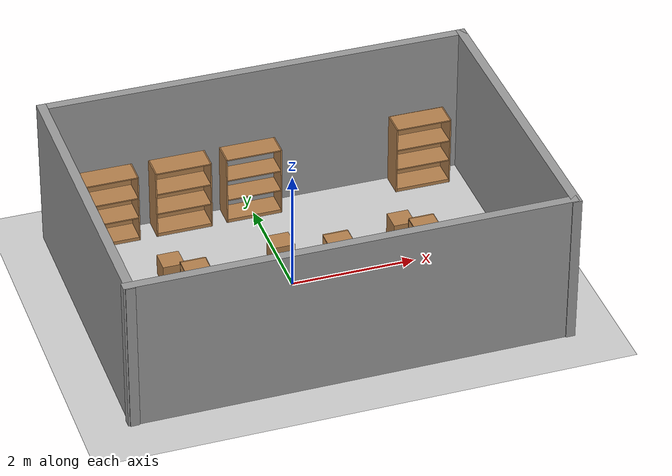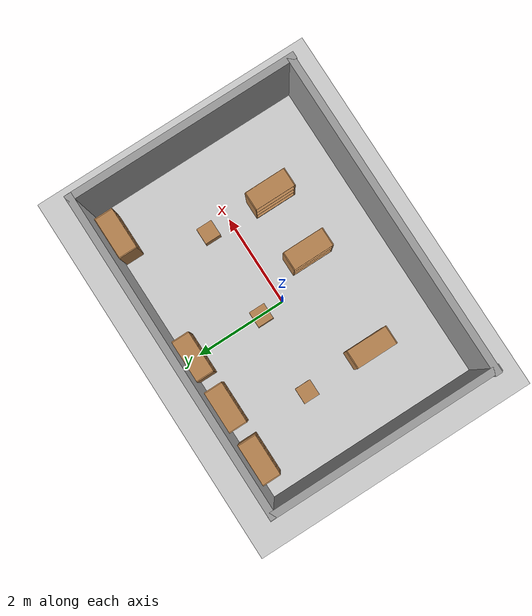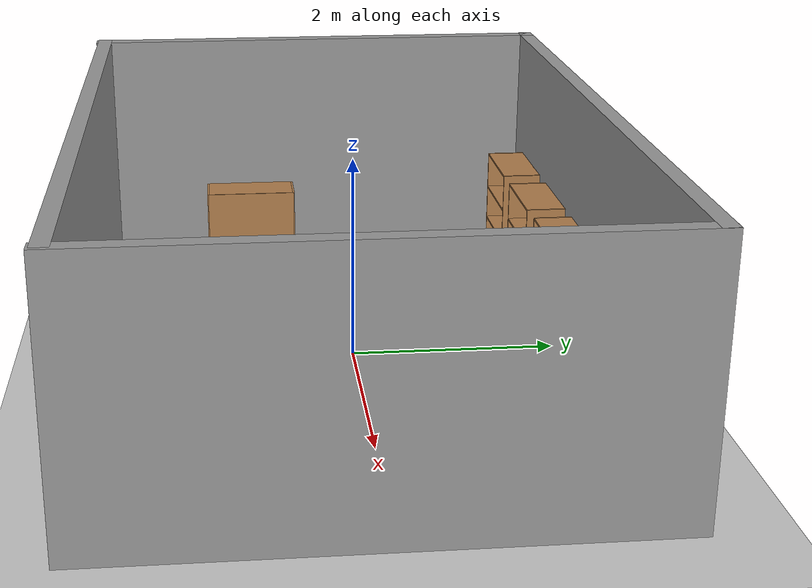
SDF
<sdf version="1.7">
 <world name="default">
  <plugin name="gazebo_ros_factory" filename="libgazebo_ros_factory.so"/>
  <model name="ground_plane">
   <static>1</static>
   <link name="link">
    <collision name="collision">
     <geometry><plane><normal>0 0 1</normal><size>100 100</size></plane></geometry>
     <surface><friction><ode><mu>100</mu><mu2>50</mu2></ode></friction></surface>
    </collision>
    <visual name="visual">
     <cast_shadows>0</cast_shadows>
     <geometry><plane><normal>0 0 1</normal><size>100 100</size></plane></geometry>
     <material>
      <script>
       <uri>file://install/models/media/materials/scripts/gazebo.material</uri>
       <name>Gazebo/Grey</name>
      </script>
     </material>
    </visual>
   </link>
  </model>
  <gravity>0 0 -9.8</gravity>
  <magnetic_field>6e-06 2.3e-05 -4.2e-05</magnetic_field>
  <atmosphere type="adiabatic"/>
  <physics name="default_physics" type="ode">
   <max_step_size>0.001</max_step_size>
   <real_time_factor>1.0</real_time_factor>
   <real_time_update_rate>1000</real_time_update_rate>
  </physics>
  <scene><ambient>0.4 0.4 0.4 1</ambient><background>0.7 0.7 0.7 1</background><shadows>1</shadows></scene>
  <spherical_coordinates>
   <surface_model>EARTH_WGS84</surface_model>
   <latitude_deg>0</latitude_deg>
   <longitude_deg>0</longitude_deg>
   <elevation>0</elevation>
   <heading_deg>0</heading_deg>
  </spherical_coordinates>
  <model name="bookshelf">
   <static>1</static>
   <link name="link">
    <inertial><mass>1</mass></inertial>
    <collision name="back">
     <pose>0 0.005 0.6 0 -0 0</pose>
     <geometry><box><size>0.9 0.01 1.2</size></box></geometry>
    </collision>
    <visual name="visual1">
     <pose>0 0.005 0.6 0 -0 0</pose>
     <geometry><box><size>0.9 0.01 1.2</size></box></geometry>
     <material>
      <script>
       <uri>file://install/models/media/materials/scripts/gazebo.material</uri>
       <name>Gazebo/Wood</name>
      </script>
     </material>
    </visual>
    <collision name="left_side">
     <pose>0.45 -0.195 0.6 0 -0 0</pose>
     <geometry><box><size>0.02 0.4 1.2</size></box></geometry>
    </collision>
    <visual name="visual2">
     <pose>0.45 -0.195 0.6 0 -0 0</pose>
     <geometry><box><size>0.02 0.4 1.2</size></box></geometry>
     <material>
      <script>
       <uri>file://install/models/media/materials/scripts/gazebo.material</uri>
       <name>Gazebo/Wood</name>
      </script>
     </material>
    </visual>
    <collision name="right_side">
     <pose>-0.45 -0.195 0.6 0 -0 0</pose>
     <geometry><box><size>0.02 0.4 1.2</size></box></geometry>
    </collision>
    <visual name="visual3">
     <pose>-0.45 -0.195 0.6 0 -0 0</pose>
     <geometry><box><size>0.02 0.4 1.2</size></box></geometry>
     <material>
      <script>
       <uri>file://install/models/media/materials/scripts/gazebo.material</uri>
       <name>Gazebo/Wood</name>
      </script>
     </material>
    </visual>
    <collision name="bottom">
     <pose>0 -0.195 0.03 0 -0 0</pose>
     <geometry><box><size>0.88 0.4 0.06</size></box></geometry>
    </collision>
    <visual name="visual4">
     <pose>0 -0.195 0.03 0 -0 0</pose>
     <geometry><box><size>0.88 0.4 0.06</size></box></geometry>
     <material>
      <script>
       <uri>file://install/models/media/materials/scripts/gazebo.material</uri>
       <name>Gazebo/Wood</name>
      </script>
     </material>
    </visual>
    <collision name="top">
     <pose>0 -0.195 1.19 0 -0 0</pose>
     <geometry><box><size>0.88 0.4 0.02</size></box></geometry>
    </collision>
    <visual name="visual5">
     <pose>0 -0.195 1.19 0 -0 0</pose>
     <geometry><box><size>0.88 0.4 0.02</size></box></geometry>
     <material>
      <script>
       <uri>file://install/models/media/materials/scripts/gazebo.material</uri>
       <name>Gazebo/Wood</name>
      </script>
     </material>
    </visual>
    <collision name="low_shelf">
     <pose>0 -0.195 0.43 0 -0 0</pose>
     <geometry><box><size>0.88 0.4 0.02</size></box></geometry>
    </collision>
    <visual name="visual6">
     <pose>0 -0.195 0.43 0 -0 0</pose>
     <geometry><box><size>0.88 0.4 0.02</size></box></geometry>
     <material>
      <script>
       <uri>file://install/models/media/materials/scripts/gazebo.material</uri>
       <name>Gazebo/Wood</name>
      </script>
     </material>
    </visual>
    <collision name="high_shelf">
     <pose>0 -0.195 0.8 0 -0 0</pose>
     <geometry><box><size>0.88 0.4 0.02</size></box></geometry>
    </collision>
    <visual name="visual7">
     <pose>0 -0.195 0.8 0 -0 0</pose>
     <geometry><box><size>0.88 0.4 0.02</size></box></geometry>
     <material>
      <script>
       <uri>file://install/models/media/materials/scripts/gazebo.material</uri>
       <name>Gazebo/Wood</name>
      </script>
     </material>
    </visual>
   </link>
   <pose>-2.36767 2.25362 0 0 -0 0</pose>
  </model>
  <model name="bookshelf_clone">
   <static>1</static>
   <link name="link">
    <inertial><mass>1</mass></inertial>
    <collision name="back">
     <pose>0 0.005 0.6 0 -0 0</pose>
     <geometry><box><size>0.9 0.01 1.2</size></box></geometry>
    </collision>
    <visual name="visual1">
     <pose>0 0.005 0.6 0 -0 0</pose>
     <geometry><box><size>0.9 0.01 1.2</size></box></geometry>
     <material>
      <script>
       <uri>file://install/models/media/materials/scripts/gazebo.material</uri>
       <name>Gazebo/Wood</name>
      </script>
     </material>
    </visual>
    <collision name="left_side">
     <pose>0.45 -0.195 0.6 0 -0 0</pose>
     <geometry><box><size>0.02 0.4 1.2</size></box></geometry>
    </collision>
    <visual name="visual2">
     <pose>0.45 -0.195 0.6 0 -0 0</pose>
     <geometry><box><size>0.02 0.4 1.2</size></box></geometry>
     <material>
      <script>
       <uri>file://install/models/media/materials/scripts/gazebo.material</uri>
       <name>Gazebo/Wood</name>
      </script>
     </material>
    </visual>
    <collision name="right_side">
     <pose>-0.45 -0.195 0.6 0 -0 0</pose>
     <geometry><box><size>0.02 0.4 1.2</size></box></geometry>
    </collision>
    <visual name="visual3">
     <pose>-0.45 -0.195 0.6 0 -0 0</pose>
     <geometry><box><size>0.02 0.4 1.2</size></box></geometry>
     <material>
      <script>
       <uri>file://install/models/media/materials/scripts/gazebo.material</uri>
       <name>Gazebo/Wood</name>
      </script>
     </material>
    </visual>
    <collision name="bottom">
     <pose>0 -0.195 0.03 0 -0 0</pose>
     <geometry><box><size>0.88 0.4 0.06</size></box></geometry>
    </collision>
    <visual name="visual4">
     <pose>0 -0.195 0.03 0 -0 0</pose>
     <geometry><box><size>0.88 0.4 0.06</size></box></geometry>
     <material>
      <script>
       <uri>file://install/models/media/materials/scripts/gazebo.material</uri>
       <name>Gazebo/Wood</name>
      </script>
     </material>
    </visual>
    <collision name="top">
     <pose>0 -0.195 1.19 0 -0 0</pose>
     <geometry><box><size>0.88 0.4 0.02</size></box></geometry>
    </collision>
    <visual name="visual5">
     <pose>0 -0.195 1.19 0 -0 0</pose>
     <geometry><box><size>0.88 0.4 0.02</size></box></geometry>
     <material>
      <script>
       <uri>file://install/models/media/materials/scripts/gazebo.material</uri>
       <name>Gazebo/Wood</name>
      </script>
     </material>
    </visual>
    <collision name="low_shelf">
     <pose>0 -0.195 0.43 0 -0 0</pose>
     <geometry><box><size>0.88 0.4 0.02</size></box></geometry>
    </collision>
    <visual name="visual6">
     <pose>0 -0.195 0.43 0 -0 0</pose>
     <geometry><box><size>0.88 0.4 0.02</size></box></geometry>
     <material>
      <script>
       <uri>file://install/models/media/materials/scripts/gazebo.material</uri>
       <name>Gazebo/Wood</name>
      </script>
     </material>
    </visual>
    <collision name="high_shelf">
     <pose>0 -0.195 0.8 0 -0 0</pose>
     <geometry><box><size>0.88 0.4 0.02</size></box></geometry>
    </collision>
    <visual name="visual7">
     <pose>0 -0.195 0.8 0 -0 0</pose>
     <geometry><box><size>0.88 0.4 0.02</size></box></geometry>
     <material>
      <script>
       <uri>file://install/models/media/materials/scripts/gazebo.material</uri>
       <name>Gazebo/Wood</name>
      </script>
     </material>
    </visual>
   </link>
   <pose>-1.17894 2.25547 0 0 -0 0</pose>
  </model>
  <model name="bookshelf_clone_0">
   <static>1</static>
   <link name="link">
    <inertial><mass>1</mass></inertial>
    <collision name="back">
     <pose>0 0.005 0.6 0 -0 0</pose>
     <geometry><box><size>0.9 0.01 1.2</size></box></geometry>
    </collision>
    <visual name="visual1">
     <pose>0 0.005 0.6 0 -0 0</pose>
     <geometry><box><size>0.9 0.01 1.2</size></box></geometry>
     <material>
      <script>
       <uri>file://install/models/media/materials/scripts/gazebo.material</uri>
       <name>Gazebo/Wood</name>
      </script>
     </material>
    </visual>
    <collision name="left_side">
     <pose>0.45 -0.195 0.6 0 -0 0</pose>
     <geometry><box><size>0.02 0.4 1.2</size></box></geometry>
    </collision>
    <visual name="visual2">
     <pose>0.45 -0.195 0.6 0 -0 0</pose>
     <geometry><box><size>0.02 0.4 1.2</size></box></geometry>
     <material>
      <script>
       <uri>file://install/models/media/materials/scripts/gazebo.material</uri>
       <name>Gazebo/Wood</name>
      </script>
     </material>
    </visual>
    <collision name="right_side">
     <pose>-0.45 -0.195 0.6 0 -0 0</pose>
     <geometry><box><size>0.02 0.4 1.2</size></box></geometry>
    </collision>
    <visual name="visual3">
     <pose>-0.45 -0.195 0.6 0 -0 0</pose>
     <geometry><box><size>0.02 0.4 1.2</size></box></geometry>
     <material>
      <script>
       <uri>file://install/models/media/materials/scripts/gazebo.material</uri>
       <name>Gazebo/Wood</name>
      </script>
     </material>
    </visual>
    <collision name="bottom">
     <pose>0 -0.195 0.03 0 -0 0</pose>
     <geometry><box><size>0.88 0.4 0.06</size></box></geometry>
    </collision>
    <visual name="visual4">
     <pose>0 -0.195 0.03 0 -0 0</pose>
     <geometry><box><size>0.88 0.4 0.06</size></box></geometry>
     <material>
      <script>
       <uri>file://install/models/media/materials/scripts/gazebo.material</uri>
       <name>Gazebo/Wood</name>
      </script>
     </material>
    </visual>
    <collision name="top">
     <pose>0 -0.195 1.19 0 -0 0</pose>
     <geometry><box><size>0.88 0.4 0.02</size></box></geometry>
    </collision>
    <visual name="visual5">
     <pose>0 -0.195 1.19 0 -0 0</pose>
     <geometry><box><size>0.88 0.4 0.02</size></box></geometry>
     <material>
      <script>
       <uri>file://install/models/media/materials/scripts/gazebo.material</uri>
       <name>Gazebo/Wood</name>
      </script>
     </material>
    </visual>
    <collision name="low_shelf">
     <pose>0 -0.195 0.43 0 -0 0</pose>
     <geometry><box><size>0.88 0.4 0.02</size></box></geometry>
    </collision>
    <visual name="visual6">
     <pose>0 -0.195 0.43 0 -0 0</pose>
     <geometry><box><size>0.88 0.4 0.02</size></box></geometry>
     <material>
      <script>
       <uri>file://install/models/media/materials/scripts/gazebo.material</uri>
       <name>Gazebo/Wood</name>
      </script>
     </material>
    </visual>
    <collision name="high_shelf">
     <pose>0 -0.195 0.8 0 -0 0</pose>
     <geometry><box><size>0.88 0.4 0.02</size></box></geometry>
    </collision>
    <visual name="visual7">
     <pose>0 -0.195 0.8 0 -0 0</pose>
     <geometry><box><size>0.88 0.4 0.02</size></box></geometry>
     <material>
      <script>
       <uri>file://install/models/media/materials/scripts/gazebo.material</uri>
       <name>Gazebo/Wood</name>
      </script>
     </material>
    </visual>
   </link>
   <pose>2.80669 2.23026 0 0 -0 0</pose>
  </model>
  <model name="bookshelf_clone_1">
   <static>1</static>
   <link name="link">
    <inertial><mass>1</mass></inertial>
    <collision name="back">
     <pose>0 0.005 0.6 0 -0 0</pose>
     <geometry><box><size>0.9 0.01 1.2</size></box></geometry>
    </collision>
    <visual name="visual1">
     <pose>0 0.005 0.6 0 -0 0</pose>
     <geometry><box><size>0.9 0.01 1.2</size></box></geometry>
     <material>
      <script>
       <uri>file://install/models/media/materials/scripts/gazebo.material</uri>
       <name>Gazebo/Wood</name>
      </script>
     </material>
    </visual>
    <collision name="left_side">
     <pose>0.45 -0.195 0.6 0 -0 0</pose>
     <geometry><box><size>0.02 0.4 1.2</size></box></geometry>
    </collision>
    <visual name="visual2">
     <pose>0.45 -0.195 0.6 0 -0 0</pose>
     <geometry><box><size>0.02 0.4 1.2</size></box></geometry>
     <material>
      <script>
       <uri>file://install/models/media/materials/scripts/gazebo.material</uri>
       <name>Gazebo/Wood</name>
      </script>
     </material>
    </visual>
    <collision name="right_side">
     <pose>-0.45 -0.195 0.6 0 -0 0</pose>
     <geometry><box><size>0.02 0.4 1.2</size></box></geometry>
    </collision>
    <visual name="visual3">
     <pose>-0.45 -0.195 0.6 0 -0 0</pose>
     <geometry><box><size>0.02 0.4 1.2</size></box></geometry>
     <material>
      <script>
       <uri>file://install/models/media/materials/scripts/gazebo.material</uri>
       <name>Gazebo/Wood</name>
      </script>
     </material>
    </visual>
    <collision name="bottom">
     <pose>0 -0.195 0.03 0 -0 0</pose>
     <geometry><box><size>0.88 0.4 0.06</size></box></geometry>
    </collision>
    <visual name="visual4">
     <pose>0 -0.195 0.03 0 -0 0</pose>
     <geometry><box><size>0.88 0.4 0.06</size></box></geometry>
     <material>
      <script>
       <uri>file://install/models/media/materials/scripts/gazebo.material</uri>
       <name>Gazebo/Wood</name>
      </script>
     </material>
    </visual>
    <collision name="top">
     <pose>0 -0.195 1.19 0 -0 0</pose>
     <geometry><box><size>0.88 0.4 0.02</size></box></geometry>
    </collision>
    <visual name="visual5">
     <pose>0 -0.195 1.19 0 -0 0</pose>
     <geometry><box><size>0.88 0.4 0.02</size></box></geometry>
     <material>
      <script>
       <uri>file://install/models/media/materials/scripts/gazebo.material</uri>
       <name>Gazebo/Wood</name>
      </script>
     </material>
    </visual>
    <collision name="low_shelf">
     <pose>0 -0.195 0.43 0 -0 0</pose>
     <geometry><box><size>0.88 0.4 0.02</size></box></geometry>
    </collision>
    <visual name="visual6">
     <pose>0 -0.195 0.43 0 -0 0</pose>
     <geometry><box><size>0.88 0.4 0.02</size></box></geometry>
     <material>
      <script>
       <uri>file://install/models/media/materials/scripts/gazebo.material</uri>
       <name>Gazebo/Wood</name>
      </script>
     </material>
    </visual>
    <collision name="high_shelf">
     <pose>0 -0.195 0.8 0 -0 0</pose>
     <geometry><box><size>0.88 0.4 0.02</size></box></geometry>
    </collision>
    <visual name="visual7">
     <pose>0 -0.195 0.8 0 -0 0</pose>
     <geometry><box><size>0.88 0.4 0.02</size></box></geometry>
     <material>
      <script>
       <uri>file://install/models/media/materials/scripts/gazebo.material</uri>
       <name>Gazebo/Wood</name>
      </script>
     </material>
    </visual>
   </link>
   <pose>0.720108 -0.938234 0 0 0 -1.56945</pose>
  </model>
  <model name="bookshelf_clone_1_clone">
   <static>1</static>
   <link name="link">
    <inertial><mass>1</mass></inertial>
    <collision name="back">
     <pose>0 0.005 0.6 0 -0 0</pose>
     <geometry><box><size>0.9 0.01 1.2</size></box></geometry>
    </collision>
    <visual name="visual1">
     <pose>0 0.005 0.6 0 -0 0</pose>
     <geometry><box><size>0.9 0.01 1.2</size></box></geometry>
     <material>
      <script>
       <uri>file://install/models/media/materials/scripts/gazebo.material</uri>
       <name>Gazebo/Wood</name>
      </script>
     </material>
    </visual>
    <collision name="left_side">
     <pose>0.45 -0.195 0.6 0 -0 0</pose>
     <geometry><box><size>0.02 0.4 1.2</size></box></geometry>
    </collision>
    <visual name="visual2">
     <pose>0.45 -0.195 0.6 0 -0 0</pose>
     <geometry><box><size>0.02 0.4 1.2</size></box></geometry>
     <material>
      <script>
       <uri>file://install/models/media/materials/scripts/gazebo.material</uri>
       <name>Gazebo/Wood</name>
      </script>
     </material>
    </visual>
    <collision name="right_side">
     <pose>-0.45 -0.195 0.6 0 -0 0</pose>
     <geometry><box><size>0.02 0.4 1.2</size></box></geometry>
    </collision>
    <visual name="visual3">
     <pose>-0.45 -0.195 0.6 0 -0 0</pose>
     <geometry><box><size>0.02 0.4 1.2</size></box></geometry>
     <material>
      <script>
       <uri>file://install/models/media/materials/scripts/gazebo.material</uri>
       <name>Gazebo/Wood</name>
      </script>
     </material>
    </visual>
    <collision name="bottom">
     <pose>0 -0.195 0.03 0 -0 0</pose>
     <geometry><box><size>0.88 0.4 0.06</size></box></geometry>
    </collision>
    <visual name="visual4">
     <pose>0 -0.195 0.03 0 -0 0</pose>
     <geometry><box><size>0.88 0.4 0.06</size></box></geometry>
     <material>
      <script>
       <uri>file://install/models/media/materials/scripts/gazebo.material</uri>
       <name>Gazebo/Wood</name>
      </script>
     </material>
    </visual>
    <collision name="top">
     <pose>0 -0.195 1.19 0 -0 0</pose>
     <geometry><box><size>0.88 0.4 0.02</size></box></geometry>
    </collision>
    <visual name="visual5">
     <pose>0 -0.195 1.19 0 -0 0</pose>
     <geometry><box><size>0.88 0.4 0.02</size></box></geometry>
     <material>
      <script>
       <uri>file://install/models/media/materials/scripts/gazebo.material</uri>
       <name>Gazebo/Wood</name>
      </script>
     </material>
    </visual>
    <collision name="low_shelf">
     <pose>0 -0.195 0.43 0 -0 0</pose>
     <geometry><box><size>0.88 0.4 0.02</size></box></geometry>
    </collision>
    <visual name="visual6">
     <pose>0 -0.195 0.43 0 -0 0</pose>
     <geometry><box><size>0.88 0.4 0.02</size></box></geometry>
     <material>
      <script>
       <uri>file://install/models/media/materials/scripts/gazebo.material</uri>
       <name>Gazebo/Wood</name>
      </script>
     </material>
    </visual>
    <collision name="high_shelf">
     <pose>0 -0.195 0.8 0 -0 0</pose>
     <geometry><box><size>0.88 0.4 0.02</size></box></geometry>
    </collision>
    <visual name="visual7">
     <pose>0 -0.195 0.8 0 -0 0</pose>
     <geometry><box><size>0.88 0.4 0.02</size></box></geometry>
     <material>
      <script>
       <uri>file://install/models/media/materials/scripts/gazebo.material</uri>
       <name>Gazebo/Wood</name>
      </script>
     </material>
    </visual>
   </link>
   <pose>2.10412 -0.948507 0 0 0 -1.56945</pose>
  </model>
  <model name="bookshelf_clone_1_clone_0">
   <static>1</static>
   <link name="link">
    <inertial><mass>1</mass></inertial>
    <collision name="back">
     <pose>0 0.005 0.6 0 -0 0</pose>
     <geometry><box><size>0.9 0.01 1.2</size></box></geometry>
    </collision>
    <visual name="visual1">
     <pose>0 0.005 0.6 0 -0 0</pose>
     <geometry><box><size>0.9 0.01 1.2</size></box></geometry>
     <material>
      <script>
       <uri>file://install/models/media/materials/scripts/gazebo.material</uri>
       <name>Gazebo/Wood</name>
      </script>
     </material>
    </visual>
    <collision name="left_side">
     <pose>0.45 -0.195 0.6 0 -0 0</pose>
     <geometry><box><size>0.02 0.4 1.2</size></box></geometry>
    </collision>
    <visual name="visual2">
     <pose>0.45 -0.195 0.6 0 -0 0</pose>
     <geometry><box><size>0.02 0.4 1.2</size></box></geometry>
     <material>
      <script>
       <uri>file://install/models/media/materials/scripts/gazebo.material</uri>
       <name>Gazebo/Wood</name>
      </script>
     </material>
    </visual>
    <collision name="right_side">
     <pose>-0.45 -0.195 0.6 0 -0 0</pose>
     <geometry><box><size>0.02 0.4 1.2</size></box></geometry>
    </collision>
    <visual name="visual3">
     <pose>-0.45 -0.195 0.6 0 -0 0</pose>
     <geometry><box><size>0.02 0.4 1.2</size></box></geometry>
     <material>
      <script>
       <uri>file://install/models/media/materials/scripts/gazebo.material</uri>
       <name>Gazebo/Wood</name>
      </script>
     </material>
    </visual>
    <collision name="bottom">
     <pose>0 -0.195 0.03 0 -0 0</pose>
     <geometry><box><size>0.88 0.4 0.06</size></box></geometry>
    </collision>
    <visual name="visual4">
     <pose>0 -0.195 0.03 0 -0 0</pose>
     <geometry><box><size>0.88 0.4 0.06</size></box></geometry>
     <material>
      <script>
       <uri>file://install/models/media/materials/scripts/gazebo.material</uri>
       <name>Gazebo/Wood</name>
      </script>
     </material>
    </visual>
    <collision name="top">
     <pose>0 -0.195 1.19 0 -0 0</pose>
     <geometry><box><size>0.88 0.4 0.02</size></box></geometry>
    </collision>
    <visual name="visual5">
     <pose>0 -0.195 1.19 0 -0 0</pose>
     <geometry><box><size>0.88 0.4 0.02</size></box></geometry>
     <material>
      <script>
       <uri>file://install/models/media/materials/scripts/gazebo.material</uri>
       <name>Gazebo/Wood</name>
      </script>
     </material>
    </visual>
    <collision name="low_shelf">
     <pose>0 -0.195 0.43 0 -0 0</pose>
     <geometry><box><size>0.88 0.4 0.02</size></box></geometry>
    </collision>
    <visual name="visual6">
     <pose>0 -0.195 0.43 0 -0 0</pose>
     <geometry><box><size>0.88 0.4 0.02</size></box></geometry>
     <material>
      <script>
       <uri>file://install/models/media/materials/scripts/gazebo.material</uri>
       <name>Gazebo/Wood</name>
      </script>
     </material>
    </visual>
    <collision name="high_shelf">
     <pose>0 -0.195 0.8 0 -0 0</pose>
     <geometry><box><size>0.88 0.4 0.02</size></box></geometry>
    </collision>
    <visual name="visual7">
     <pose>0 -0.195 0.8 0 -0 0</pose>
     <geometry><box><size>0.88 0.4 0.02</size></box></geometry>
     <material>
      <script>
       <uri>file://install/models/media/materials/scripts/gazebo.material</uri>
       <name>Gazebo/Wood</name>
      </script>
     </material>
    </visual>
   </link>
   <pose>-1.5401 -0.931909 0 0 0 -1.56945</pose>
  </model>
  <audio><device>default</device></audio>
  <model name="small_box_rl4greeros">
   <link name="link">
    <inertial>
     <mass>0.7</mass>
     <inertia>
      <ixx>0.116667</ixx>
      <ixy>0</ixy>
      <ixz>0</ixz>
      <iyy>0.116667</iyy>
      <iyz>0</iyz>
      <izz>0.116667</izz>
     </inertia>
    </inertial>
    <visual name="visual">
     <geometry><box><size>0.35 0.35 0.35</size></box></geometry>
     <material>
      <script>
       <name>Gazebo/Wood</name>
       <uri>file://install/models/media/materials/scripts/gazebo.material</uri>
      </script>
      <shader type="vertex"><normal_map>__default__</normal_map></shader>
      <ambient>0.3 0.3 0.3 1</ambient>
      <diffuse>0.7 0.7 0.7 1</diffuse>
      <specular>0.01 0.01 0.01 1</specular>
      <emissive>0 0 0 1</emissive>
     </material>
    </visual>
    <collision name="collision">
     <geometry><box><size>0.35 0.35 0.35</size></box></geometry>
     <surface>
      <friction>
       <ode><mu>1</mu><mu2>1</mu2><fdir1>0 0 0</fdir1><slip1>0</slip1><slip2>0</slip2></ode>
       <torsional>
        <coefficient>1</coefficient>
        <patch_radius>0</patch_radius>
        <surface_radius>0</surface_radius>
        <use_patch_radius>1</use_patch_radius>
        <ode><slip>0</slip></ode>
       </torsional>
      </friction>
      <bounce><restitution_coefficient>0</restitution_coefficient><threshold>1e+06</threshold></bounce>
      <contact>
       <collide_without_contact>0</collide_without_contact>
       <collide_without_contact_bitmask>1</collide_without_contact_bitmask>
       <collide_bitmask>1</collide_bitmask>
       <ode>
        <soft_cfm>0</soft_cfm>
        <soft_erp>0.2</soft_erp>
        <kp>1e+13</kp>
        <kd>1</kd>
        <max_vel>0.01</max_vel>
        <min_depth>0</min_depth>
       </ode>
       <bullet>
        <split_impulse>1</split_impulse>
        <split_impulse_penetration_threshold>-0.01</split_impulse_penetration_threshold>
        <soft_cfm>0</soft_cfm>
        <soft_erp>0.2</soft_erp>
        <kp>1e+13</kp>
        <kd>1</kd>
       </bullet>
      </contact>
     </surface>
    </collision>
   </link>
   <static>0</static>
   <pose>1.94976 0.497697 0.310834 0.000424 0.003156 -6.7e-05</pose>
  </model>
  <model name="small_box_rl4greeros_clone">
   <link name="link">
    <inertial>
     <mass>0.7</mass>
     <inertia>
      <ixx>0.116667</ixx>
      <ixy>0</ixy>
      <ixz>0</ixz>
      <iyy>0.116667</iyy>
      <iyz>0</iyz>
      <izz>0.116667</izz>
     </inertia>
    </inertial>
    <visual name="visual">
     <geometry><box><size>0.35 0.35 0.35</size></box></geometry>
     <material>
      <script>
       <name>Gazebo/Wood</name>
       <uri>file://install/models/media/materials/scripts/gazebo.material</uri>
      </script>
      <shader type="vertex"><normal_map>__default__</normal_map></shader>
      <ambient>0.3 0.3 0.3 1</ambient>
      <diffuse>0.7 0.7 0.7 1</diffuse>
      <specular>0.01 0.01 0.01 1</specular>
      <emissive>0 0 0 1</emissive>
     </material>
    </visual>
    <collision name="collision">
     <geometry><box><size>0.35 0.35 0.35</size></box></geometry>
     <surface>
      <friction>
       <ode><mu>1</mu><mu2>1</mu2><fdir1>0 0 0</fdir1><slip1>0</slip1><slip2>0</slip2></ode>
       <torsional>
        <coefficient>1</coefficient>
        <patch_radius>0</patch_radius>
        <surface_radius>0</surface_radius>
        <use_patch_radius>1</use_patch_radius>
        <ode><slip>0</slip></ode>
       </torsional>
      </friction>
      <bounce><restitution_coefficient>0</restitution_coefficient><threshold>1e+06</threshold></bounce>
      <contact>
       <collide_without_contact>0</collide_without_contact>
       <collide_without_contact_bitmask>1</collide_without_contact_bitmask>
       <collide_bitmask>1</collide_bitmask>
       <ode>
        <soft_cfm>0</soft_cfm>
        <soft_erp>0.2</soft_erp>
        <kp>1e+13</kp>
        <kd>1</kd>
        <max_vel>0.01</max_vel>
        <min_depth>0</min_depth>
       </ode>
       <bullet>
        <split_impulse>1</split_impulse>
        <split_impulse_penetration_threshold>-0.01</split_impulse_penetration_threshold>
        <soft_cfm>0</soft_cfm>
        <soft_erp>0.2</soft_erp>
        <kp>1e+13</kp>
        <kd>1</kd>
       </bullet>
      </contact>
     </surface>
    </collision>
   </link>
   <static>0</static>
   <pose>-0.022068 0.511684 0.317336 -0 -4e-06 3.1e-05</pose>
  </model>
  <model name="small_box_rl4greeros_clone_clone">
   <link name="link">
    <inertial>
     <mass>0.7</mass>
     <inertia>
      <ixx>0.116667</ixx>
      <ixy>0</ixy>
      <ixz>0</ixz>
      <iyy>0.116667</iyy>
      <iyz>0</iyz>
      <izz>0.116667</izz>
     </inertia>
    </inertial>
    <visual name="visual">
     <geometry><box><size>0.35 0.35 0.35</size></box></geometry>
     <material>
      <script>
       <name>Gazebo/Wood</name>
       <uri>file://install/models/media/materials/scripts/gazebo.material</uri>
      </script>
      <shader type="vertex"><normal_map>__default__</normal_map></shader>
      <ambient>0.3 0.3 0.3 1</ambient>
      <diffuse>0.7 0.7 0.7 1</diffuse>
      <specular>0.01 0.01 0.01 1</specular>
      <emissive>0 0 0 1</emissive>
     </material>
    </visual>
    <collision name="collision">
     <geometry><box><size>0.35 0.35 0.35</size></box></geometry>
     <surface>
      <friction>
       <ode><mu>1</mu><mu2>1</mu2><fdir1>0 0 0</fdir1><slip1>0</slip1><slip2>0</slip2></ode>
       <torsional>
        <coefficient>1</coefficient>
        <patch_radius>0</patch_radius>
        <surface_radius>0</surface_radius>
        <use_patch_radius>1</use_patch_radius>
        <ode><slip>0</slip></ode>
       </torsional>
      </friction>
      <bounce><restitution_coefficient>0</restitution_coefficient><threshold>1e+06</threshold></bounce>
      <contact>
       <collide_without_contact>0</collide_without_contact>
       <collide_without_contact_bitmask>1</collide_without_contact_bitmask>
       <collide_bitmask>1</collide_bitmask>
       <ode>
        <soft_cfm>0</soft_cfm>
        <soft_erp>0.2</soft_erp>
        <kp>1e+13</kp>
        <kd>1</kd>
        <max_vel>0.01</max_vel>
        <min_depth>0</min_depth>
       </ode>
       <bullet>
        <split_impulse>1</split_impulse>
        <split_impulse_penetration_threshold>-0.01</split_impulse_penetration_threshold>
        <soft_cfm>0</soft_cfm>
        <soft_erp>0.2</soft_erp>
        <kp>1e+13</kp>
        <kd>1</kd>
       </bullet>
      </contact>
     </surface>
    </collision>
   </link>
   <static>0</static>
   <pose>-1.78764 0.565581 0.31709 0.000933 -9e-06 -1.6e-05</pose>
  </model>
  <light name="user_point_light_0" type="point">
   <pose>0.074508 0.119662 1 0 -0 0</pose>
   <diffuse>0.5 0.5 0.5 1</diffuse>
   <specular>0.1 0.1 0.1 1</specular>
   <attenuation>
    <range>20</range>
    <constant>0.5</constant>
    <linear>0.01</linear>
    <quadratic>0.001</quadratic>
   </attenuation>
   <cast_shadows>0</cast_shadows>
   <direction>0 0 -1</direction>
   <spot><inner_angle>0</inner_angle><outer_angle>0</outer_angle><falloff>0</falloff></spot>
  </light>
  <model name="bookshelf_clone_clone">
   <static>1</static>
   <link name="link">
    <inertial><mass>1</mass></inertial>
    <collision name="back">
     <pose>0 0.005 0.6 0 -0 0</pose>
     <geometry><box><size>0.9 0.01 1.2</size></box></geometry>
    </collision>
    <visual name="visual1">
     <pose>0 0.005 0.6 0 -0 0</pose>
     <geometry><box><size>0.9 0.01 1.2</size></box></geometry>
     <material>
      <script>
       <uri>file://install/models/media/materials/scripts/gazebo.material</uri>
       <name>Gazebo/Wood</name>
      </script>
     </material>
    </visual>
    <collision name="left_side">
     <pose>0.45 -0.195 0.6 0 -0 0</pose>
     <geometry><box><size>0.02 0.4 1.2</size></box></geometry>
    </collision>
    <visual name="visual2">
     <pose>0.45 -0.195 0.6 0 -0 0</pose>
     <geometry><box><size>0.02 0.4 1.2</size></box></geometry>
     <material>
      <script>
       <uri>file://install/models/media/materials/scripts/gazebo.material</uri>
       <name>Gazebo/Wood</name>
      </script>
     </material>
    </visual>
    <collision name="right_side">
     <pose>-0.45 -0.195 0.6 0 -0 0</pose>
     <geometry><box><size>0.02 0.4 1.2</size></box></geometry>
    </collision>
    <visual name="visual3">
     <pose>-0.45 -0.195 0.6 0 -0 0</pose>
     <geometry><box><size>0.02 0.4 1.2</size></box></geometry>
     <material>
      <script>
       <uri>file://install/models/media/materials/scripts/gazebo.material</uri>
       <name>Gazebo/Wood</name>
      </script>
     </material>
    </visual>
    <collision name="bottom">
     <pose>0 -0.195 0.03 0 -0 0</pose>
     <geometry><box><size>0.88 0.4 0.06</size></box></geometry>
    </collision>
    <visual name="visual4">
     <pose>0 -0.195 0.03 0 -0 0</pose>
     <geometry><box><size>0.88 0.4 0.06</size></box></geometry>
     <material>
      <script>
       <uri>file://install/models/media/materials/scripts/gazebo.material</uri>
       <name>Gazebo/Wood</name>
      </script>
     </material>
    </visual>
    <collision name="top">
     <pose>0 -0.195 1.19 0 -0 0</pose>
     <geometry><box><size>0.88 0.4 0.02</size></box></geometry>
    </collision>
    <visual name="visual5">
     <pose>0 -0.195 1.19 0 -0 0</pose>
     <geometry><box><size>0.88 0.4 0.02</size></box></geometry>
     <material>
      <script>
       <uri>file://install/models/media/materials/scripts/gazebo.material</uri>
       <name>Gazebo/Wood</name>
      </script>
     </material>
    </visual>
    <collision name="low_shelf">
     <pose>0 -0.195 0.43 0 -0 0</pose>
     <geometry><box><size>0.88 0.4 0.02</size></box></geometry>
    </collision>
    <visual name="visual6">
     <pose>0 -0.195 0.43 0 -0 0</pose>
     <geometry><box><size>0.88 0.4 0.02</size></box></geometry>
     <material>
      <script>
       <uri>file://install/models/media/materials/scripts/gazebo.material</uri>
       <name>Gazebo/Wood</name>
      </script>
     </material>
    </visual>
    <collision name="high_shelf">
     <pose>0 -0.195 0.8 0 -0 0</pose>
     <geometry><box><size>0.88 0.4 0.02</size></box></geometry>
    </collision>
    <visual name="visual7">
     <pose>0 -0.195 0.8 0 -0 0</pose>
     <geometry><box><size>0.88 0.4 0.02</size></box></geometry>
     <material>
      <script>
       <uri>file://install/models/media/materials/scripts/gazebo.material</uri>
       <name>Gazebo/Wood</name>
      </script>
     </material>
    </visual>
   </link>
   <pose>-0.017756 2.26953 0 0 -0 0</pose>
  </model>
  <model name="large_room">
   <link name="Wall_0">
    <pose>2e-06 0.671804 0 0 -0 3.14159</pose>
    <inertial>
     <mass>1</mass>
     <inertia><ixx>1</ixx><ixy>0</ixy><ixz>0</ixz><iyy>1</iyy><iyz>0</iyz><izz>1</izz></inertia>
    </inertial>
    <visual name="Wall_0_Visual">
     <pose>0 0 1.25 0 -0 0</pose>
     <geometry><box><size>7 0.15 2.5</size></box></geometry>
     <material>
      <script>
       <uri>file://install/models/media/materials/scripts/gazebo.material</uri>
       <name>Gazebo/Grey</name>
      </script>
      <ambient>1 1 1 1</ambient>
      <shader type="pixel"><normal_map>__default__</normal_map></shader>
      <diffuse>0.7 0.7 0.7 1</diffuse>
      <specular>0.01 0.01 0.01 1</specular>
      <emissive>0 0 0 1</emissive>
     </material>
     <meta><layer>0</layer></meta>
    </visual>
    <collision name="Wall_0_Collision">
     <pose>0 0 1.25 0 -0 0</pose>
     <geometry><box><size>7 0.15 2.5</size></box></geometry>
     <surface>
      <friction>
       <ode><mu>1</mu><mu2>1</mu2><fdir1>0 0 0</fdir1><slip1>0</slip1><slip2>0</slip2></ode>
       <torsional>
        <coefficient>1</coefficient>
        <patch_radius>0</patch_radius>
        <surface_radius>0</surface_radius>
        <use_patch_radius>1</use_patch_radius>
        <ode><slip>0</slip></ode>
       </torsional>
      </friction>
      <bounce><restitution_coefficient>0</restitution_coefficient><threshold>1e+06</threshold></bounce>
      <contact>
       <collide_without_contact>0</collide_without_contact>
       <collide_without_contact_bitmask>1</collide_without_contact_bitmask>
       <collide_bitmask>1</collide_bitmask>
       <ode>
        <soft_cfm>0</soft_cfm>
        <soft_erp>0.2</soft_erp>
        <kp>1e+13</kp>
        <kd>1</kd>
        <max_vel>0.01</max_vel>
        <min_depth>0</min_depth>
       </ode>
       <bullet>
        <split_impulse>1</split_impulse>
        <split_impulse_penetration_threshold>-0.01</split_impulse_penetration_threshold>
        <soft_cfm>0</soft_cfm>
        <soft_erp>0.2</soft_erp>
        <kp>1e+13</kp>
        <kd>1</kd>
       </bullet>
      </contact>
     </surface>
    </collision>
   </link>
   <link name="Wall_0_clone">
    <pose>-0.035208 -4.16031 0 0 -0 3.14159</pose>
    <inertial>
     <mass>1</mass>
     <inertia><ixx>1</ixx><ixy>0</ixy><ixz>0</ixz><iyy>1</iyy><iyz>0</iyz><izz>1</izz></inertia>
    </inertial>
    <visual name="Wall_0_Visual">
     <pose>0 0 1.25 0 -0 0</pose>
     <geometry><box><size>7 0.15 2.5</size></box></geometry>
     <material>
      <script>
       <uri>file://install/models/media/materials/scripts/gazebo.material</uri>
       <name>Gazebo/Grey</name>
      </script>
      <ambient>1 1 1 1</ambient>
      <shader type="pixel"><normal_map>__default__</normal_map></shader>
      <diffuse>0.7 0.7 0.7 1</diffuse>
      <specular>0.01 0.01 0.01 1</specular>
      <emissive>0 0 0 1</emissive>
     </material>
     <meta><layer>0</layer></meta>
    </visual>
    <collision name="Wall_0_Collision">
     <pose>0 0 1.25 0 -0 0</pose>
     <geometry><box><size>7 0.15 2.5</size></box></geometry>
     <surface>
      <friction>
       <ode><mu>1</mu><mu2>1</mu2><fdir1>0 0 0</fdir1><slip1>0</slip1><slip2>0</slip2></ode>
       <torsional>
        <coefficient>1</coefficient>
        <patch_radius>0</patch_radius>
        <surface_radius>0</surface_radius>
        <use_patch_radius>1</use_patch_radius>
        <ode><slip>0</slip></ode>
       </torsional>
      </friction>
      <bounce><restitution_coefficient>0</restitution_coefficient><threshold>1e+06</threshold></bounce>
      <contact>
       <collide_without_contact>0</collide_without_contact>
       <collide_without_contact_bitmask>1</collide_without_contact_bitmask>
       <collide_bitmask>1</collide_bitmask>
       <ode>
        <soft_cfm>0</soft_cfm>
        <soft_erp>0.2</soft_erp>
        <kp>1e+13</kp>
        <kd>1</kd>
        <max_vel>0.01</max_vel>
        <min_depth>0</min_depth>
       </ode>
       <bullet>
        <split_impulse>1</split_impulse>
        <split_impulse_penetration_threshold>-0.01</split_impulse_penetration_threshold>
        <soft_cfm>0</soft_cfm>
        <soft_erp>0.2</soft_erp>
        <kp>1e+13</kp>
        <kd>1</kd>
       </bullet>
      </contact>
     </surface>
    </collision>
   </link>
   <link name="Wall_1">
    <pose>-3.43201 -1.75249 0 0 0 -1.5708</pose>
    <inertial>
     <mass>1</mass>
     <inertia><ixx>1</ixx><ixy>0</ixy><ixz>0</ixz><iyy>1</iyy><iyz>0</iyz><izz>1</izz></inertia>
    </inertial>
    <visual name="Wall_1_Visual">
     <pose>0 0 1.25 0 -0 0</pose>
     <geometry><box><size>5 0.15 2.5</size></box></geometry>
     <material>
      <script>
       <uri>file://install/models/media/materials/scripts/gazebo.material</uri>
       <name>Gazebo/Grey</name>
      </script>
      <ambient>1 1 1 1</ambient>
      <shader type="pixel"><normal_map>__default__</normal_map></shader>
      <diffuse>0.7 0.7 0.7 1</diffuse>
      <specular>0.01 0.01 0.01 1</specular>
      <emissive>0 0 0 1</emissive>
     </material>
     <meta><layer>0</layer></meta>
    </visual>
    <collision name="Wall_1_Collision">
     <pose>0 0 1.25 0 -0 0</pose>
     <geometry><box><size>5 0.15 2.5</size></box></geometry>
     <surface>
      <friction>
       <ode><mu>1</mu><mu2>1</mu2><fdir1>0 0 0</fdir1><slip1>0</slip1><slip2>0</slip2></ode>
       <torsional>
        <coefficient>1</coefficient>
        <patch_radius>0</patch_radius>
        <surface_radius>0</surface_radius>
        <use_patch_radius>1</use_patch_radius>
        <ode><slip>0</slip></ode>
       </torsional>
      </friction>
      <bounce><restitution_coefficient>0</restitution_coefficient><threshold>1e+06</threshold></bounce>
      <contact>
       <collide_without_contact>0</collide_without_contact>
       <collide_without_contact_bitmask>1</collide_without_contact_bitmask>
       <collide_bitmask>1</collide_bitmask>
       <ode>
        <soft_cfm>0</soft_cfm>
        <soft_erp>0.2</soft_erp>
        <kp>1e+13</kp>
        <kd>1</kd>
        <max_vel>0.01</max_vel>
        <min_depth>0</min_depth>
       </ode>
       <bullet>
        <split_impulse>1</split_impulse>
        <split_impulse_penetration_threshold>-0.01</split_impulse_penetration_threshold>
        <soft_cfm>0</soft_cfm>
        <soft_erp>0.2</soft_erp>
        <kp>1e+13</kp>
        <kd>1</kd>
       </bullet>
      </contact>
     </surface>
    </collision>
   </link>
   <link name="Wall_3">
    <pose>3.42847 -1.75249 0 0 -0 1.5708</pose>
    <inertial>
     <mass>1</mass>
     <inertia><ixx>1</ixx><ixy>0</ixy><ixz>0</ixz><iyy>1</iyy><iyz>0</iyz><izz>1</izz></inertia>
    </inertial>
    <visual name="Wall_3_Visual">
     <pose>0 0 1.25 0 -0 0</pose>
     <geometry><box><size>5 0.15 2.5</size></box></geometry>
     <material>
      <script>
       <uri>file://install/models/media/materials/scripts/gazebo.material</uri>
       <name>Gazebo/Grey</name>
      </script>
      <ambient>1 1 1 1</ambient>
      <shader type="pixel"><normal_map>__default__</normal_map></shader>
      <diffuse>0.7 0.7 0.7 1</diffuse>
      <specular>0.01 0.01 0.01 1</specular>
      <emissive>0 0 0 1</emissive>
     </material>
     <meta><layer>0</layer></meta>
    </visual>
    <collision name="Wall_3_Collision">
     <pose>0 0 1.25 0 -0 0</pose>
     <geometry><box><size>5 0.15 2.5</size></box></geometry>
     <surface>
      <friction>
       <ode><mu>1</mu><mu2>1</mu2><fdir1>0 0 0</fdir1><slip1>0</slip1><slip2>0</slip2></ode>
       <torsional>
        <coefficient>1</coefficient>
        <patch_radius>0</patch_radius>
        <surface_radius>0</surface_radius>
        <use_patch_radius>1</use_patch_radius>
        <ode><slip>0</slip></ode>
       </torsional>
      </friction>
      <bounce><restitution_coefficient>0</restitution_coefficient><threshold>1e+06</threshold></bounce>
      <contact>
       <collide_without_contact>0</collide_without_contact>
       <collide_without_contact_bitmask>1</collide_without_contact_bitmask>
       <collide_bitmask>1</collide_bitmask>
       <ode>
        <soft_cfm>0</soft_cfm>
        <soft_erp>0.2</soft_erp>
        <kp>1e+13</kp>
        <kd>1</kd>
        <max_vel>0.01</max_vel>
        <min_depth>0</min_depth>
       </ode>
       <bullet>
        <split_impulse>1</split_impulse>
        <split_impulse_penetration_threshold>-0.01</split_impulse_penetration_threshold>
        <soft_cfm>0</soft_cfm>
        <soft_erp>0.2</soft_erp>
        <kp>1e+13</kp>
        <kd>1</kd>
       </bullet>
      </contact>
     </surface>
    </collision>
   </link>
   <static>1</static>
   <pose>0.157884 1.65993 0 0 -0 0</pose>
  </model>
 </world>
</sdf>
